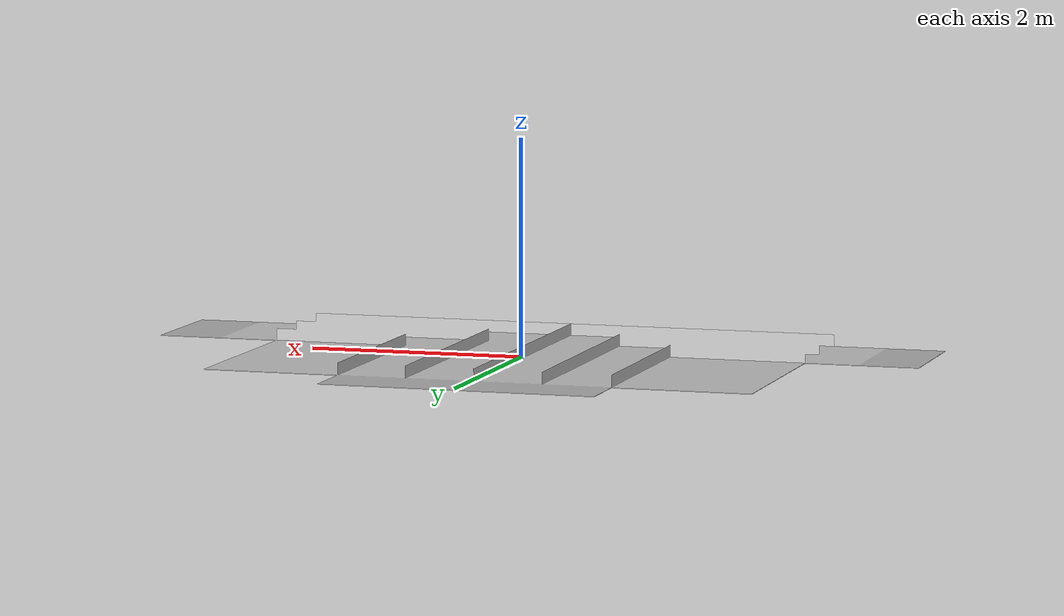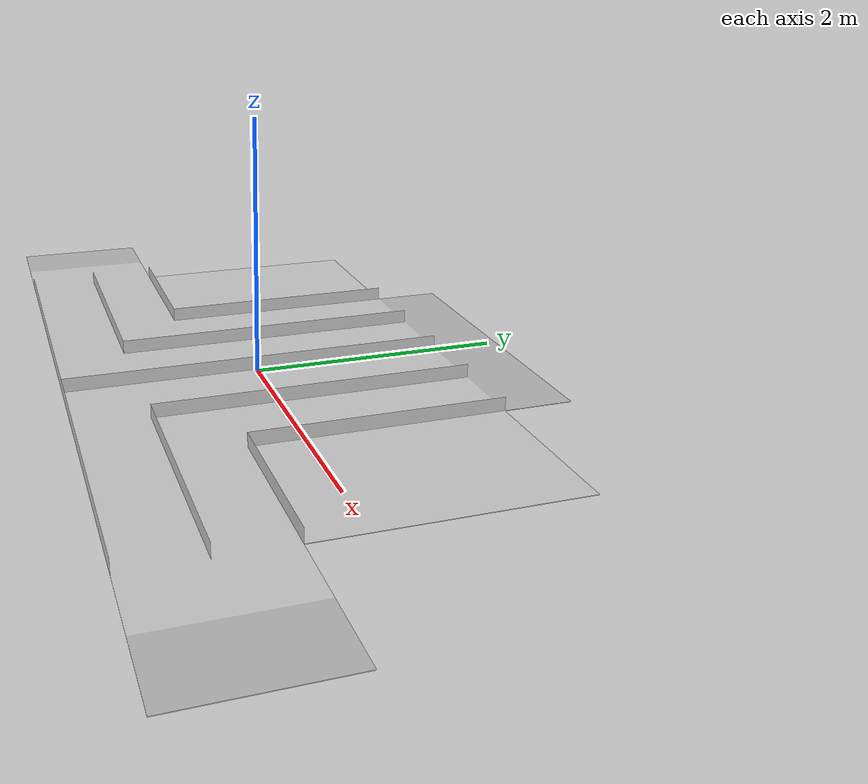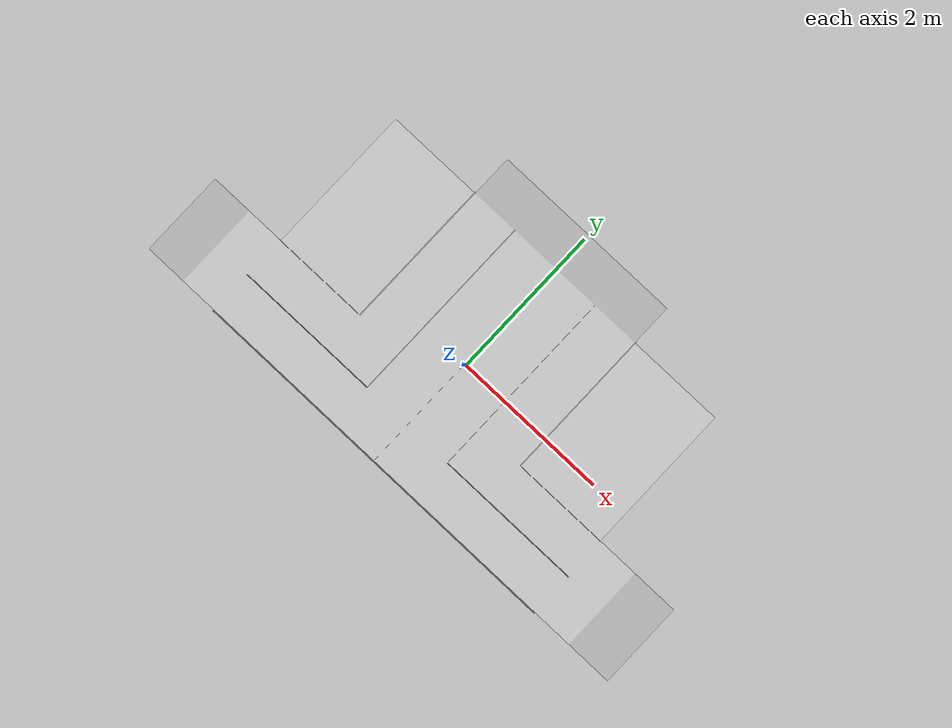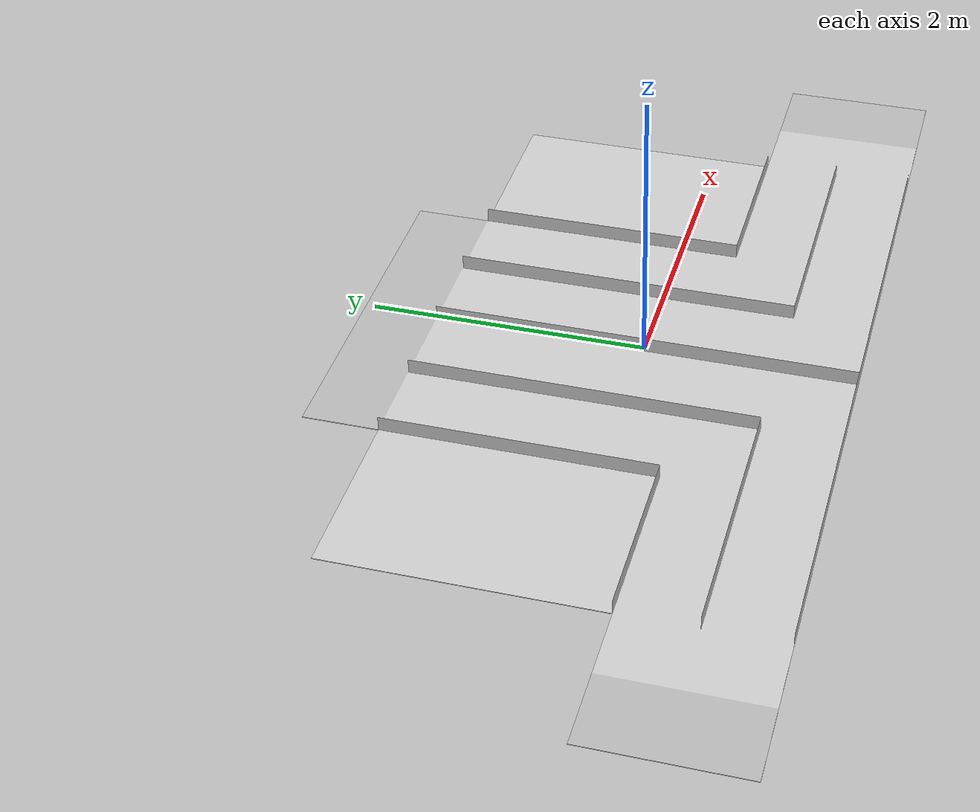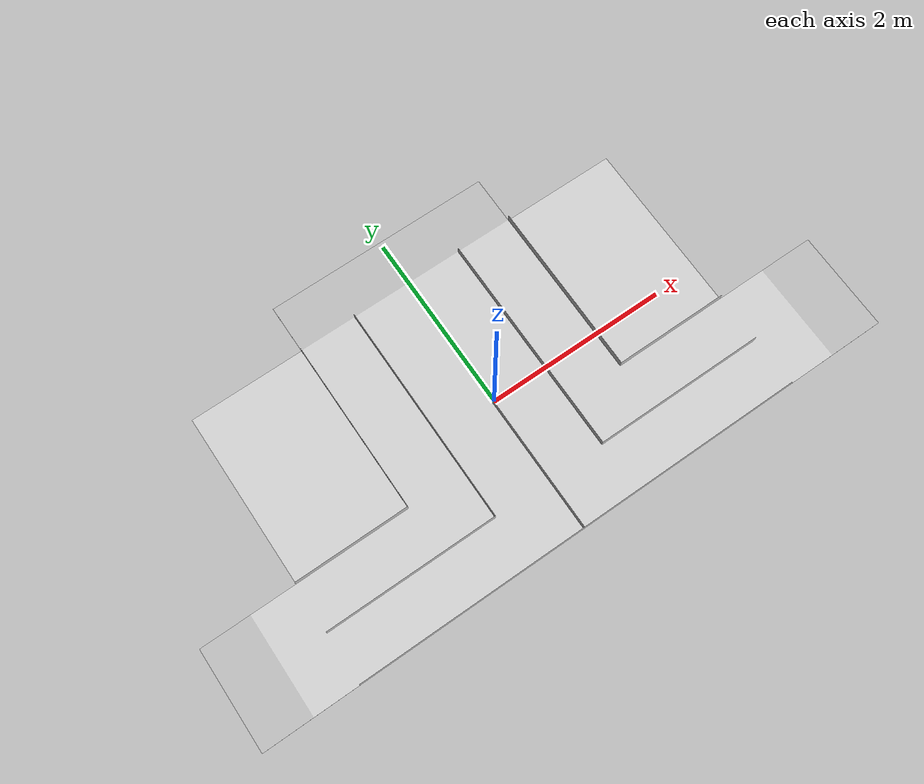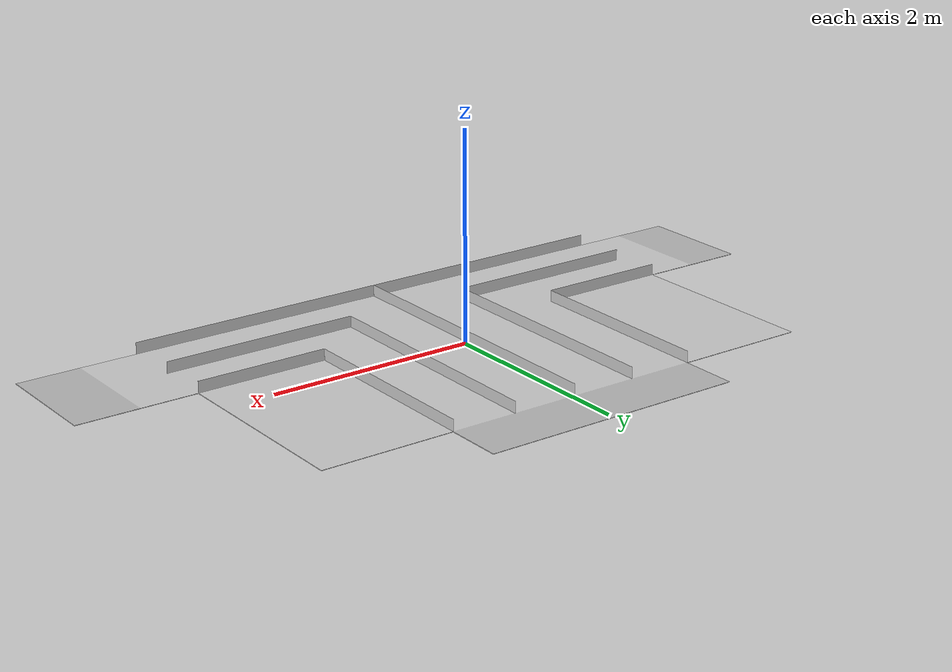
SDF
<sdf version='1.6'>
  <model name='cam_bot'>
    <link name='base_link'>
      <pose frame=''>0 0 0 0 -0 0</pose>
      <inertial>
        <pose frame=''>0 0 0 0 -0 0</pose>
        <mass>1.58499</mass>
        <inertia>
          <ixx>0.01042</ixx>
          <ixy>0.001177</ixy>
          <ixz>-0.0008871</ixz>
          <iyy>0.01045</iyy>
          <iyz>0.0002226</iyz>
          <izz>0.01817</izz>
        </inertia>
      </inertial>
      <collision name='base_link_collision'>
        <pose frame=''>0 0 0 0 -0 0</pose>
        <geometry>
          <mesh>
            <scale>1 1 1</scale>
            <uri>model://flipkart_round_arena/material/arena_one.dae</uri>
          </mesh>
        </geometry>
      </collision>
      <visual name='base_link_visual'>
        <pose frame=''>0 0 0 0 -0 0</pose>
        <geometry>
          <mesh>
            <scale>1 1 1</scale>
            <uri>model://flipkart_round_arena/material/arena_one.dae</uri>
          </mesh>
        </geometry>
      </visual>
      <gravity>1</gravity>
      <velocity_decay/>
      <sensor name='camera' type='camera'>
        <update_rate>30</update_rate>
        <camera name='head'>
          <horizontal_fov>1.39626</horizontal_fov>
          <image>
            <width>640</width>
            <height>480</height>
            <format>R8G8B8</format>
          </image>
          <clip>
            <near>0.02</near>
            <far>300</far>
          </clip>
          <noise>
            <type>gaussian</type>
            <mean>0</mean>
            <stddev>0.007</stddev>
          </noise>
        </camera>
        <plugin name='camera_controller' filename='libgazebo_ros_camera.so'>
          <alwaysOn>1</alwaysOn>
          <updateRate>0.0</updateRate>
          <cameraName>usb_cam</cameraName>
          <imageTopicName>image_raw</imageTopicName>
          <cameraInfoTopicName>/camera/camera_info</cameraInfoTopicName>
          <frameName>camera_link</frameName>
          <hackBaseline>0.07</hackBaseline>
          <distortionK1>0.0</distortionK1>
          <distortionK2>0.0</distortionK2>
          <distortionK3>0.0</distortionK3>
          <distortionT1>0.0</distortionT1>
          <distortionT2>0.0</distortionT2>
        </plugin>
        <pose frame=''>0 0 5 -3.14119 1.571 1.571</pose>
      </sensor>
    </link>
  </model>
</sdf>
